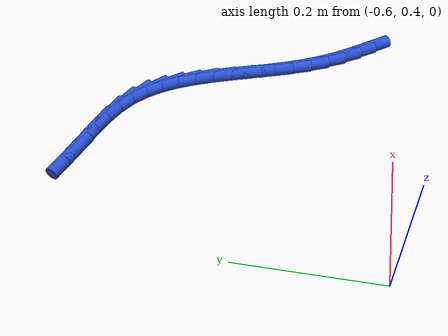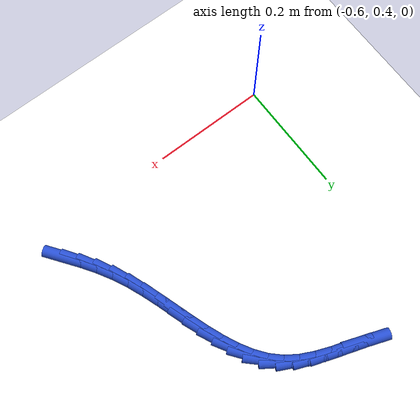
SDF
<sdf version="1.6">
 <world name="default">
  <model name="ground_plane">
   <static>1</static>
   <link name="link">
    <collision name="collision">
     <geometry><plane><normal>0 0 1</normal><size>100 100</size></plane></geometry>
     <surface><friction><ode><mu>100</mu><mu2>50</mu2></ode></friction></surface>
    </collision>
    <visual name="visual">
     <cast_shadows>0</cast_shadows>
     <geometry><plane><normal>0 0 1</normal><size>100 100</size></plane></geometry>
     <material>
      <script><uri>file://media/materials/scripts/gazebo.material</uri><name>Gazebo/WhiteGlow</name></script>
     </material>
    </visual>
   </link>
  </model>
  <model name="line">
   <link name="link_18">
    <pose>-0.17080737414372885 0.447596872929256 0.01 0 1.57 -0.9394712555922621</pose>
    <collision name="collision">
     <geometry><cylinder><radius>0.01</radius><length>0.08</length></cylinder></geometry>
    </collision>
    <visual name="visual">
     <material>
      <script><name>Gazebo/Blue</name><uri>file://media/materials/scripts/gazebo.material</uri></script>
     </material>
     <geometry><cylinder><radius>0.01</radius><length>0.08</length></cylinder></geometry>
    </visual>
   </link>
   <link name="link_19">
    <pose>-0.18746355190388778 0.47037778616502385 0.01 0 1.57 -0.9866443600876831</pose>
    <collision name="collision">
     <geometry><cylinder><radius>0.01</radius><length>0.08</length></cylinder></geometry>
    </collision>
    <visual name="visual">
     <material>
      <script><name>Gazebo/Blue</name><uri>file://media/materials/scripts/gazebo.material</uri></script>
     </material>
     <geometry><cylinder><radius>0.01</radius><length>0.08</length></cylinder></geometry>
    </visual>
   </link>
   <link name="link_20">
    <pose>-0.2030975897886677 0.4940256338774649 0.01 0 1.57 -1.0469044571565393</pose>
    <collision name="collision">
     <geometry><cylinder><radius>0.01</radius><length>0.08</length></cylinder></geometry>
    </collision>
    <visual name="visual">
     <material>
      <script><name>Gazebo/Blue</name><uri>file://media/materials/scripts/gazebo.material</uri></script>
     </material>
     <geometry><cylinder><radius>0.01</radius><length>0.08</length></cylinder></geometry>
    </visual>
   </link>
   <link name="link_21">
    <pose>-0.2173800570855417 0.5187468569645014 0.01 0 1.57 -1.1184058844431575</pose>
    <collision name="collision">
     <geometry><cylinder><radius>0.01</radius><length>0.08</length></cylinder></geometry>
    </collision>
    <visual name="visual">
     <material>
      <script><name>Gazebo/Blue</name><uri>file://media/materials/scripts/gazebo.material</uri></script>
     </material>
     <geometry><cylinder><radius>0.01</radius><length>0.08</length></cylinder></geometry>
    </visual>
   </link>
   <link name="link_22">
    <pose>-0.23000680958957956 0.5447274703326499 0.01 0 1.57 -1.182380434496997</pose>
    <collision name="collision">
     <geometry><cylinder><radius>0.01</radius><length>0.08</length></cylinder></geometry>
    </collision>
    <visual name="visual">
     <material>
      <script><name>Gazebo/Blue</name><uri>file://media/materials/scripts/gazebo.material</uri></script>
     </material>
     <geometry><cylinder><radius>0.01</radius><length>0.08</length></cylinder></geometry>
    </visual>
   </link>
   <link name="link_23">
    <pose>-0.24109154040703054 0.5718159673349146 0.01 0 1.57 -1.225140455244971</pose>
    <collision name="collision">
     <geometry><cylinder><radius>0.01</radius><length>0.08</length></cylinder></geometry>
    </collision>
    <visual name="visual">
     <material>
      <script><name>Gazebo/Blue</name><uri>file://media/materials/scripts/gazebo.material</uri></script>
     </material>
     <geometry><cylinder><radius>0.01</radius><length>0.08</length></cylinder></geometry>
    </visual>
   </link>
   <link name="link_24">
    <pose>-0.25109106143106 0.5995836760666726 0.01 0 1.57 -1.2476132856732944</pose>
    <collision name="collision">
     <geometry><cylinder><radius>0.01</radius><length>0.08</length></cylinder></geometry>
    </collision>
    <visual name="visual">
     <material>
      <script><name>Gazebo/Blue</name><uri>file://media/materials/scripts/gazebo.material</uri></script>
     </material>
     <geometry><cylinder><radius>0.01</radius><length>0.08</length></cylinder></geometry>
    </visual>
   </link>
   <link name="link_25">
    <pose>-0.26047234529259766 0.6275937169599279 0.01 0 1.57 -1.250399248419881</pose>
    <collision name="collision">
     <geometry><cylinder><radius>0.01</radius><length>0.08</length></cylinder></geometry>
    </collision>
    <visual name="visual">
     <material>
      <script><name>Gazebo/Blue</name><uri>file://media/materials/scripts/gazebo.material</uri></script>
     </material>
     <geometry><cylinder><radius>0.01</radius><length>0.08</length></cylinder></geometry>
    </visual>
   </link>
   <link name="link_26">
    <pose>-0.2697023646225733 0.6554092104466842 0.01 0 1.57 -1.233095985175565</pose>
    <collision name="collision">
     <geometry><cylinder><radius>0.01</radius><length>0.08</length></cylinder></geometry>
    </collision>
    <visual name="visual">
     <material>
      <script><name>Gazebo/Blue</name><uri>file://media/materials/scripts/gazebo.material</uri></script>
     </material>
     <geometry><cylinder><radius>0.01</radius><length>0.08</length></cylinder></geometry>
    </visual>
   </link>
   <link name="link_27">
    <pose>-0.2792480920519167 0.6825932769589457 0.01 0 1.57 -1.1941876833717333</pose>
    <collision name="collision">
     <geometry><cylinder><radius>0.01</radius><length>0.08</length></cylinder></geometry>
    </collision>
    <visual name="visual">
     <material>
      <script><name>Gazebo/Blue</name><uri>file://media/materials/scripts/gazebo.material</uri></script>
     </material>
     <geometry><cylinder><radius>0.01</radius><length>0.08</length></cylinder></geometry>
    </visual>
   </link>
   <link name="link_28">
    <pose>-0.2895765002115575 0.7087090369287155 0.01 0 1.57 -1.1310663556052067</pose>
    <collision name="collision">
     <geometry><cylinder><radius>0.01</radius><length>0.08</length></cylinder></geometry>
    </collision>
    <visual name="visual">
     <material>
      <script><name>Gazebo/Blue</name><uri>file://media/materials/scripts/gazebo.material</uri></script>
     </material>
     <geometry><cylinder><radius>0.01</radius><length>0.08</length></cylinder></geometry>
    </visual>
   </link>
   <link name="link_29">
    <pose>-0.3011545617324257 0.7333196107879981 0.01 0 1.57 -1.0403753247503162</pose>
    <collision name="collision">
     <geometry><cylinder><radius>0.01</radius><length>0.08</length></cylinder></geometry>
    </collision>
    <visual name="visual">
     <material>
      <script><name>Gazebo/Blue</name><uri>file://media/materials/scripts/gazebo.material</uri></script>
     </material>
     <geometry><cylinder><radius>0.01</radius><length>0.08</length></cylinder></geometry>
    </visual>
   </link>
   <link name="link_30">
    <pose>-0.31444924924545065 0.7559881189687965 0.01 0 1.57 -0.9191095690090589</pose>
    <collision name="collision">
     <geometry><cylinder><radius>0.01</radius><length>0.08</length></cylinder></geometry>
    </collision>
    <visual name="visual">
     <material>
      <script><name>Gazebo/Blue</name><uri>file://media/materials/scripts/gazebo.material</uri></script>
     </material>
     <geometry><cylinder><radius>0.01</radius><length>0.08</length></cylinder></geometry>
    </visual>
   </link>
   <link name="link_31">
    <pose>-0.3299275353815625 0.7762776819031153 0.01 0 1.57 -0.766999354647303</pose>
    <collision name="collision">
     <geometry><cylinder><radius>0.01</radius><length>0.08</length></cylinder></geometry>
    </collision>
    <visual name="visual">
     <material>
      <script><name>Gazebo/Blue</name><uri>file://media/materials/scripts/gazebo.material</uri></script>
     </material>
     <geometry><cylinder><radius>0.01</radius><length>0.08</length></cylinder></geometry>
    </visual>
   </link>
   <link name="link_32">
    <pose>-0.34805639277169087 0.793751420022958 0.01 0 1.57 -0.5981969944369034</pose>
    <collision name="collision">
     <geometry><cylinder><radius>0.01</radius><length>0.08</length></cylinder></geometry>
    </collision>
    <visual name="visual">
     <material>
      <script><name>Gazebo/Blue</name><uri>file://media/materials/scripts/gazebo.material</uri></script>
     </material>
     <geometry><cylinder><radius>0.01</radius><length>0.08</length></cylinder></geometry>
    </visual>
   </link>
   <link name="link_33">
    <pose>-0.36915740236508815 0.808131614075938 0.01 0 1.57 -0.4644031500263688</pose>
    <collision name="collision">
     <geometry><cylinder><radius>0.01</radius><length>0.08</length></cylinder></geometry>
    </collision>
    <visual name="visual">
     <material>
      <script><name>Gazebo/Blue</name><uri>file://media/materials/scripts/gazebo.material</uri></script>
     </material>
     <geometry><cylinder><radius>0.01</radius><length>0.08</length></cylinder></geometry>
    </visual>
   </link>
   <link name="link_34">
    <pose>-0.39279289832779907 0.8199716924808923 0.01 0 1.57 -0.37812577525415075</pose>
    <collision name="collision">
     <geometry><cylinder><radius>0.01</radius><length>0.08</length></cylinder></geometry>
    </collision>
    <visual name="visual">
     <material>
      <script><name>Gazebo/Blue</name><uri>file://media/materials/scripts/gazebo.material</uri></script>
     </material>
     <geometry><cylinder><radius>0.01</radius><length>0.08</length></cylinder></geometry>
    </visual>
   </link>
   <link name="link_35">
    <pose>-0.4182781922926956 0.8300954992945325 0.01 0 1.57 -0.3334597781663252</pose>
    <collision name="collision">
     <geometry><cylinder><radius>0.01</radius><length>0.08</length></cylinder></geometry>
    </collision>
    <visual name="visual">
     <material>
      <script><name>Gazebo/Blue</name><uri>file://media/materials/scripts/gazebo.material</uri></script>
     </material>
     <geometry><cylinder><radius>0.01</radius><length>0.08</length></cylinder></geometry>
    </visual>
   </link>
   <link name="link_36">
    <pose>-0.44492846297600935 0.8393270240774552 0.01 0 1.57 -0.3257179871921345</pose>
    <collision name="collision">
     <geometry><cylinder><radius>0.01</radius><length>0.08</length></cylinder></geometry>
    </collision>
    <visual name="visual">
     <material>
      <script><name>Gazebo/Blue</name><uri>file://media/materials/scripts/gazebo.material</uri></script>
     </material>
     <geometry><cylinder><radius>0.01</radius><length>0.08</length></cylinder></geometry>
    </visual>
   </link>
   <link name="link_37">
    <pose>-0.4720588890939725 0.8484902563902554 0.01 0 1.57 -0.3529548242485485</pose>
    <collision name="collision">
     <geometry><cylinder><radius>0.01</radius><length>0.08</length></cylinder></geometry>
    </collision>
    <visual name="visual">
     <material>
      <script><name>Gazebo/Blue</name><uri>file://media/materials/scripts/gazebo.material</uri></script>
     </material>
     <geometry><cylinder><radius>0.01</radius><length>0.08</length></cylinder></geometry>
    </visual>
   </link>
  </model>
 </world>
</sdf>
